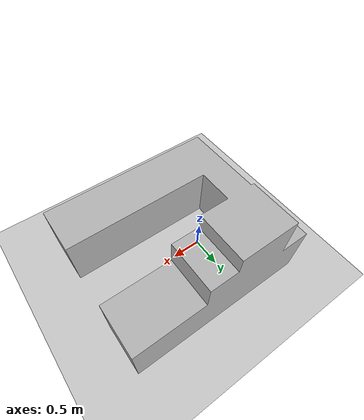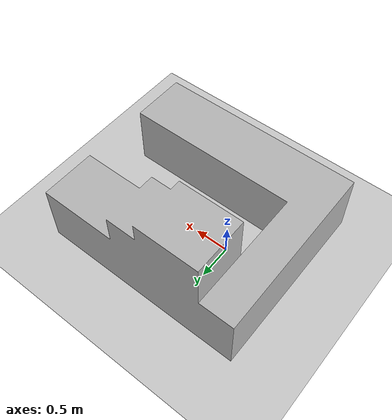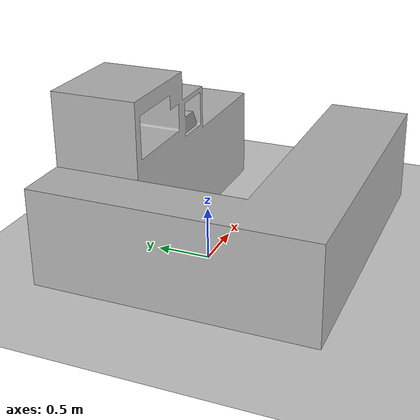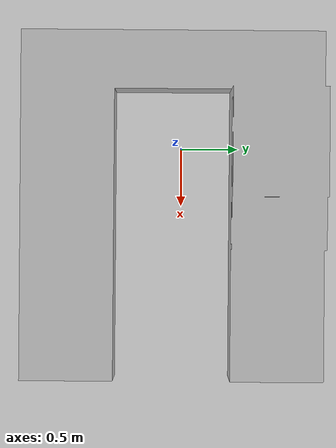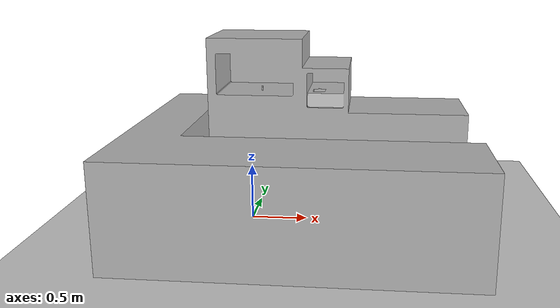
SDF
<?xml version="1.0" ?>
<sdf version="1.6">
  <world name="default">
    <!-- 必须：LinkAttacher 插件 -->
    <plugin name="gazebo_link_attacher" filename="libgazebo_link_attacher.so"/>

    <!-- 可选：光源 & 地面 -->
    <include>
      <uri>model://sun</uri>
    </include>
    <include>
      <uri>model://ground_plane</uri>
    </include>

    <!-- 你的 labworld：等价于 -x -0.5 -y 0.85 -z 0.92 -->
    <include>
      <name>labworld</name>
      <uri>model://labworld</uri>
      <pose>-0.5 0.85 0.92 0 0 0</pose>
      <!-- 可按需设置是否静态 -->
    </include>

    <!-- 你的 cuvette：等价于 -x 0 -y 0.66 -z 1.08 -->
    <include>
      <name>cuvette</name>
      <uri>model://cuvette</uri>
      <pose>0 0.66 1.08 0 0 0</pose>
    </include>
  </world>
</sdf>

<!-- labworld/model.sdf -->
<sdf version="1.6">
  <model name="labworld">
    <static>true</static>
    <link name="labworld_link">
      <visual name="labworld_visual">
        <geometry>
          <mesh>
            <uri>model://labworld/meshes/labworld.stl</uri>
            <scale>0.001 0.001 0.001</scale>
          </mesh>
        </geometry>
      </visual>

      <collision name="box_collision_1">
        <pose>0.2 0 -0.3 0 0 0</pose>
        <geometry>
          <box>
            <size>1.50 0.8 0.92</size>
          </box>
        </geometry>
      </collision>

      <collision name="box_collision_2">
        <pose>1.1 0 -0.2 0 0 0</pose>
        <geometry>
          <box>
            <size>0.12 0.12 0.4</size>
          </box>
        </geometry>
      </collision>

    </link>
  </model>
</sdf>

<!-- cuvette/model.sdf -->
<sdf version="1.6">
  <model name="cuvette">
    <pose>0.3 0 0 0 0 0</pose>
    <static>false</static>

    <link name="cuvette_link">

      <visual name="cuvette_visual">
        <geometry>
          <mesh>
            <uri>model://cuvette/meshes/cuvette.stl</uri>
            <scale>0.001 0.001 0.001</scale>
          </mesh>
        </geometry>
        <material>
          <ambient>0.8 0.8 0.8 1</ambient>
          <diffuse>0.8 0.8 0.8 1</diffuse>
          <specular>0.5 0.5 0.5 1</specular>
        </material>
      </visual>

      <collision name="cuvette_collision">
        <geometry>
          <mesh>
            <uri>model://cuvette/meshes/cuvette.stl</uri>
            <scale>0.001 0.001 0.001</scale>
          </mesh>
        </geometry>
        <surface>
          <friction>
            <ode>
              <mu>0.5</mu>
              <mu2>0.5</mu2>
            </ode>
          </friction>
          <bounce>
            <restitution_coefficient>0.05</restitution_coefficient>
            <threshold>100000</threshold>
          </bounce>
          <contact>
            <ode>
              <kp>100000</kp>
              <kd>1.0</kd>
              <contact_surface_layer>0.0015</contact_surface_layer>
            </ode>
          </contact>
        </surface>
      </collision>

      <inertial>
        <mass>0.015</mass>
        <inertia>
          <ixx>2.73e-06</ixx>
          <iyy>2.73e-06</iyy>
          <izz>3.91e-07</izz>
          <ixy>0</ixy>
          <ixz>0</ixz>
          <iyz>0</iyz>
        </inertia>
      </inertial>

    </link>
  </model>
</sdf>
